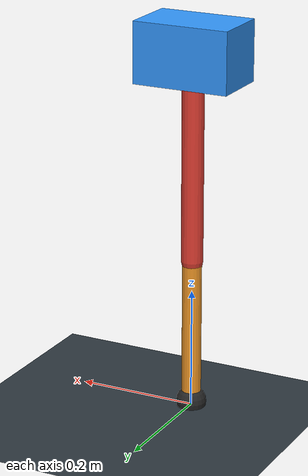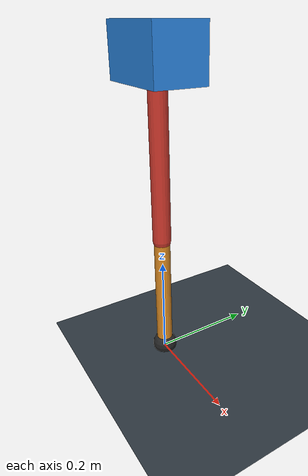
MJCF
<mujoco model="single_axis_two_bar">
  <compiler angle="radian" inertiafromgeom="true"/>
  <option timestep="0.001" integrator="implicitfast" gravity="0 0 -9.81"/>
  <default>
    <joint damping="0.08"/>
    <geom friction="1.2 0.01 0.0001" condim="3"/>
  </default>
  <worldbody>
    <geom name="floor" type="plane" size="5 5 0.1" rgba="0.18 0.22 0.25 1"/>
    <body name="carriage" pos="0 0 0.5977370769086475">
      <joint name="pole_slide" type="slide" axis="0 0 1"/>
      <geom name="payload" type="box" size="0.08 0.05 0.05" mass="2.554237467976198" rgba="0.2 0.6 1 1"/>
      <body name="thigh" pos="0 0 0">
        <joint name="hip" type="hinge" axis="0 1 0"/>
        <geom name="thigh_link" type="capsule" fromto="0 0 0 0 0 -0.3451051482005452" size="0.018" mass="0.24589197825508627" rgba="0.9 0.25 0.2 1"/>
        <body name="shank" pos="0 0 -0.3451051482005452">
          <joint name="knee" type="hinge" axis="0 1 0"/>
          <geom name="shank_link" type="capsule" fromto="0 0 0 0 0 -0.24534544655063775" size="0.016" mass="0.17481187262137324" rgba="0.95 0.6 0.15 1"/>
          <geom name="foot" type="sphere" pos="0 0 -0.24534544655063775" size="0.025" mass="0.03" rgba="0.15 0.15 0.15 1"/>
          <site name="toe" pos="0 0 -0.24534544655063775" size="0.008"/>
        </body>
      </body>
    </body>
  </worldbody>
  <actuator>
    <motor name="hip_motor" joint="hip" ctrlrange="-21.2262464559599 21.2262464559599"/>
    <motor name="knee_motor" joint="knee" ctrlrange="-105.67102735734228 105.67102735734228"/>
  </actuator>
</mujoco>
